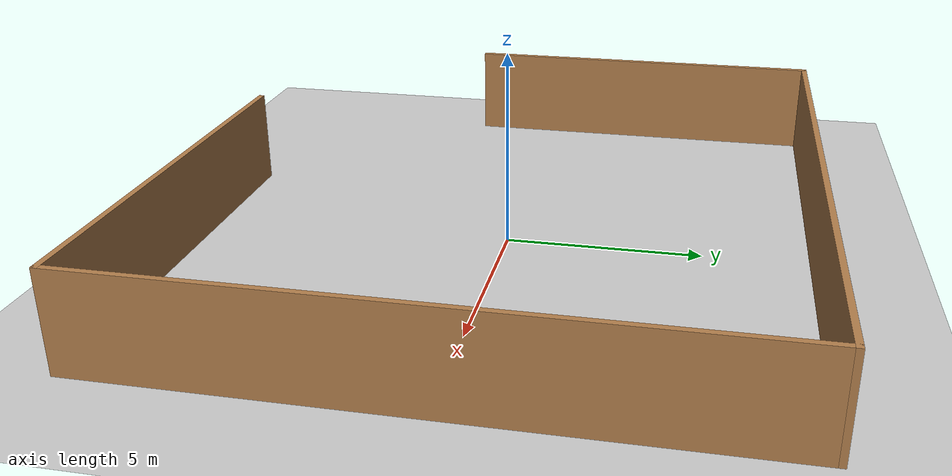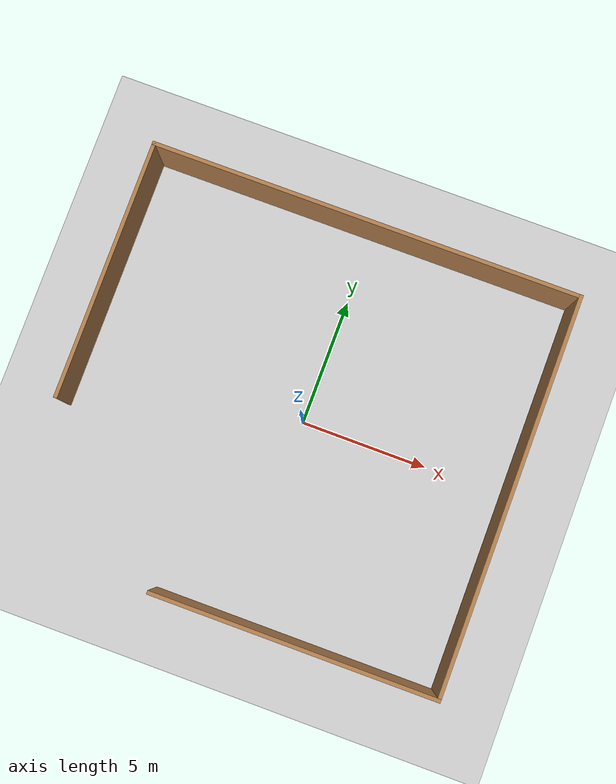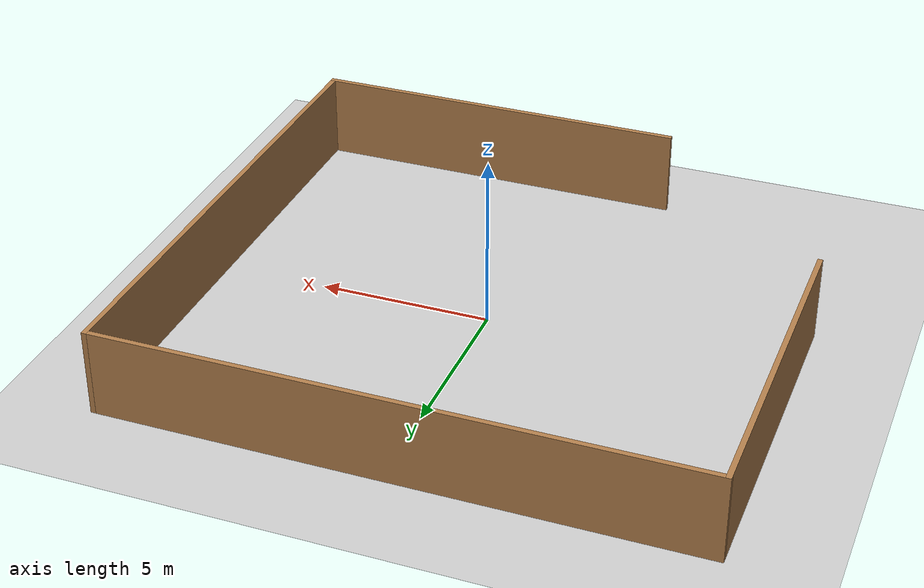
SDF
<sdf version="1.7">
 <world name="default">
  <model name="ground_plane">
   <static>1</static>
   <link name="link">
    <collision name="collision">
     <geometry><plane><normal>0 0 1</normal><size>100 100</size></plane></geometry>
     <surface>
      <contact><collide_bitmask>65535</collide_bitmask></contact>
      <friction><ode><mu>100</mu><mu2>50</mu2></ode></friction>
     </surface>
    </collision>
    <visual name="visual">
     <cast_shadows>0</cast_shadows>
     <geometry><plane><normal>0 0 1</normal><size>100 100</size></plane></geometry>
     <material>
      <script><uri>file://media/materials/scripts/gazebo.material</uri><name>Gazebo/Grey</name></script>
     </material>
    </visual>
   </link>
  </model>
  <light name="sun" type="directional">
   <pose>0 0 10 0 -0 0</pose>
   <diffuse>0.8 0.8 0.8 1</diffuse>
   <specular>0.2 0.2 0.2 1</specular>
   <attenuation>
    <range>1000</range>
    <constant>0.9</constant>
    <linear>0.01</linear>
    <quadratic>0.001</quadratic>
   </attenuation>
   <direction>-0.5 0.1 -0.9</direction>
   <spot><inner_angle>0</inner_angle><outer_angle>0</outer_angle><falloff>0</falloff></spot>
  </light>
  <scene><shadows>0</shadows><ambient>0.4 0.4 0.4 1</ambient><background>0.7 0.7 0.7 1</background></scene>
  <physics type="ode">
   <real_time_update_rate>1000</real_time_update_rate>
   <max_step_size>0.001</max_step_size>
   <real_time_factor>1</real_time_factor>
   <ode>
    <solver>
     <type>quick</type>
     <iters>150</iters>
     <precon_iters>0</precon_iters>
     <sor>1.4</sor>
     <use_dynamic_moi_rescaling>1</use_dynamic_moi_rescaling>
    </solver>
    <constraints>
     <cfm>1e-05</cfm>
     <erp>0.2</erp>
     <contact_max_correcting_vel>2000</contact_max_correcting_vel>
     <contact_surface_layer>0.01</contact_surface_layer>
    </constraints>
   </ode>
  </physics>
  <gravity>0 0 -9.8</gravity>
  <magnetic_field>6e-06 2.3e-05 -4.2e-05</magnetic_field>
  <atmosphere type="adiabatic"/>
  <audio><device>default</device></audio>
  <spherical_coordinates>
   <surface_model>EARTH_WGS84</surface_model>
   <latitude_deg>0</latitude_deg>
   <longitude_deg>0</longitude_deg>
   <elevation>0</elevation>
   <heading_deg>0</heading_deg>
  </spherical_coordinates>
  <model name="wall_follow">
   <pose>-0.304637 -0.069089 0 0 -0 0</pose>
   <link name="Wall_11">
    <collision name="Wall_11_Collision">
     <geometry><box><size>11.25 0.15 2.5</size></box></geometry>
     <pose>0 0 1.25 0 -0 0</pose>
    </collision>
    <visual name="Wall_11_Visual">
     <pose>0 0 1.25 0 -0 0</pose>
     <geometry><box><size>11.25 0.15 2.5</size></box></geometry>
     <material>
      <script><uri>file://media/materials/scripts/gazebo.material</uri><name>Gazebo/Wood</name></script>
      <ambient>1 1 1 1</ambient>
     </material>
     <meta><layer>0</layer></meta>
    </visual>
    <pose>2.875 -7.8 0 0 -0 0</pose>
   </link>
   <link name="Wall_12">
    <collision name="Wall_12_Collision">
     <geometry><box><size>15.75 0.15 2.5</size></box></geometry>
     <pose>0 0 1.25 0 -0 0</pose>
    </collision>
    <visual name="Wall_12_Visual">
     <pose>0 0 1.25 0 -0 0</pose>
     <geometry><box><size>15.75 0.15 2.5</size></box></geometry>
     <material>
      <script><uri>file://media/materials/scripts/gazebo.material</uri><name>Gazebo/Wood</name></script>
      <ambient>1 1 1 1</ambient>
     </material>
     <meta><layer>0</layer></meta>
    </visual>
    <pose>8.425 -0 0 0 -0 1.5708</pose>
   </link>
   <link name="Wall_13">
    <collision name="Wall_13_Collision">
     <geometry><box><size>17 0.15 2.5</size></box></geometry>
     <pose>0 0 1.25 0 -0 0</pose>
    </collision>
    <visual name="Wall_13_Visual">
     <pose>0 0 1.25 0 -0 0</pose>
     <geometry><box><size>17 0.15 2.5</size></box></geometry>
     <material>
      <script><uri>file://media/materials/scripts/gazebo.material</uri><name>Gazebo/Wood</name></script>
      <ambient>1 1 1 1</ambient>
     </material>
     <meta><layer>0</layer></meta>
    </visual>
    <pose>-0 7.8 0 0 -0 3.14159</pose>
   </link>
   <link name="Wall_14">
    <collision name="Wall_14_Collision">
     <geometry><box><size>10.25 0.15 2.5</size></box></geometry>
     <pose>0 0 1.25 0 -0 0</pose>
    </collision>
    <visual name="Wall_14_Visual">
     <pose>0 0 1.25 0 -0 0</pose>
     <geometry><box><size>10.25 0.15 2.5</size></box></geometry>
     <material>
      <script><uri>file://media/materials/scripts/gazebo.material</uri><name>Gazebo/Wood</name></script>
      <ambient>1 1 1 1</ambient>
     </material>
     <meta><layer>0</layer></meta>
    </visual>
    <pose>-8.425 2.75 0 0 -0 -1.5708</pose>
   </link>
   <static>1</static>
  </model>
 </world>
</sdf>
